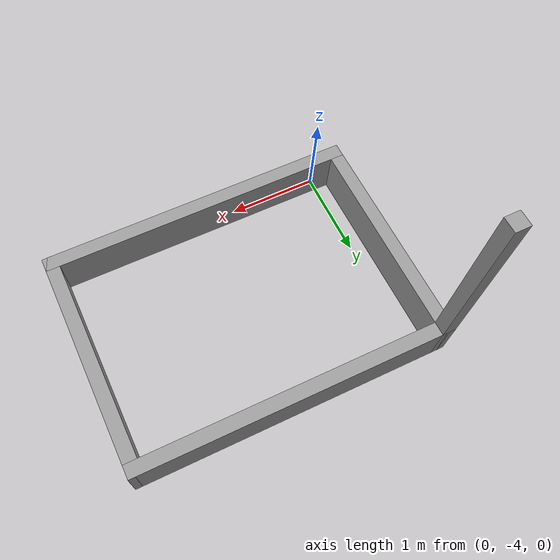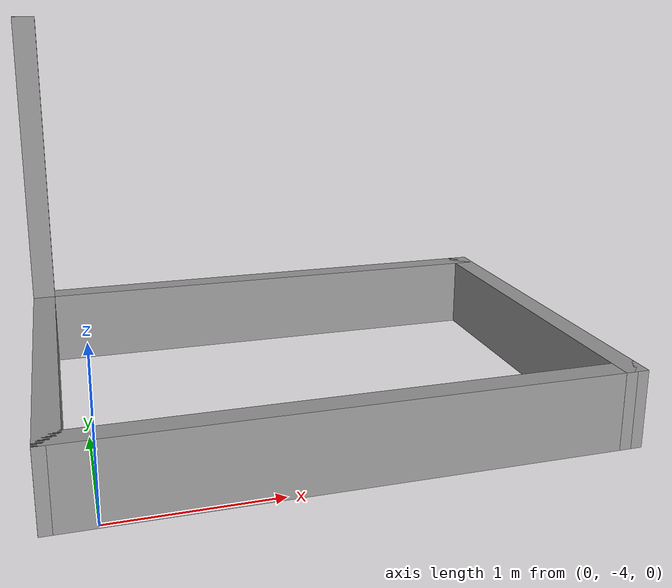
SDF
<?xml version='1.0'?>
<sdf version='1.6'>
  <model name='Mybuild2'>
    <pose frame=''>1.445 -2.78 0 0 -0 0</pose>
    <link name='Wall_0'>
      <collision name='Wall_0_Collision'>
        <geometry>
          <box>
            <size>3.50001 0.15 0.5</size>
          </box>
        </geometry>
        <pose frame=''>0 0 0.25 0 -0 0</pose>
      </collision>
      <visual name='Wall_0_Visual'>
        <pose frame=''>0 0 0.25 0 -0 0</pose>
        <geometry>
          <box>
            <size>3.50001 0.15 0.5</size>
          </box>
        </geometry>
        <material>
          <script>
            <uri>file://media/materials/scripts/gazebo.material</uri>
            <name>Gazebo/Grey</name>
          </script>
          <ambient>1 1 1 1</ambient>
        </material>
        <meta>
          <layer>0</layer>
        </meta>
      </visual>
      <pose frame=''>0 1.175 0 0 -0 -0.002985</pose>
    </link>
    <link name='Wall_1'>
      <collision name='Wall_1_Collision'>
        <geometry>
          <box>
            <size>2.5 0.15 0.5</size>
          </box>
        </geometry>
        <pose frame=''>0 0 0.25 0 -0 0</pose>
      </collision>
      <visual name='Wall_1_Visual'>
        <pose frame=''>0 0 0.25 0 -0 0</pose>
        <geometry>
          <box>
            <size>2.5 0.15 0.5</size>
          </box>
        </geometry>
        <material>
          <script>
            <uri>file://media/materials/scripts/gazebo.material</uri>
            <name>Gazebo/Grey</name>
          </script>
          <ambient>1 1 1 1</ambient>
        </material>
        <meta>
          <layer>0</layer>
        </meta>
      </visual>
      <pose frame=''>1.675 -0.005 0 0 -0 -1.5708</pose>
    </link>
    <link name='Wall_2'>
      <collision name='Wall_2_Collision'>
        <geometry>
          <box>
            <size>3.5 0.15 0.5</size>
          </box>
        </geometry>
        <pose frame=''>0 0 0.25 0 -0 0</pose>
      </collision>
      <visual name='Wall_2_Visual'>
        <pose frame=''>0 0 0.25 0 -0 0</pose>
        <geometry>
          <box>
            <size>3.5 0.15 0.5</size>
          </box>
        </geometry>
        <material>
          <script>
            <uri>file://media/materials/scripts/gazebo.material</uri>
            <name>Gazebo/Grey</name>
          </script>
          <ambient>1 1 1 1</ambient>
        </material>
        <meta>
          <layer>0</layer>
        </meta>
      </visual>
      <pose frame=''>0 -1.175 0 0 -0 3.13861</pose>
    </link>
    <link name='Wall_3'>
      <collision name='Wall_3_Collision'>
        <geometry>
          <box>
            <size>2.5 0.15 0.5</size>
          </box>
        </geometry>
        <pose frame=''>0 0 0.25 0 -0 0</pose>
      </collision>
      <visual name='Wall_3_Visual'>
        <pose frame=''>0 0 0.25 0 -0 0</pose>
        <geometry>
          <box>
            <size>2.5 0.15 0.5</size>
          </box>
        </geometry>
        <material>
          <script>
            <uri>file://media/materials/scripts/gazebo.material</uri>
            <name>Gazebo/Grey</name>
          </script>
          <ambient>1 1 1 1</ambient>
        </material>
        <meta>
          <layer>0</layer>
        </meta>
      </visual>
      <pose frame=''>-1.675 0.005 0 0 -0 1.5708</pose>
    </link>
    <link name='Wall_4'>
      <collision name='Wall_4_Collision'>
        <geometry>
          <box>
            <size>0.15 0.15 2.5</size>
          </box>
        </geometry>
        <pose frame=''>0 0 1.25 0 -0 0</pose>
      </collision>
      <visual name='Wall_4_Visual'>
        <pose frame=''>0 0 1.25 0 -0 0</pose>
        <geometry>
          <box>
            <size>0.15 0.15 2.5</size>
          </box>
        </geometry>
        <material>
          <script>
            <uri>file://media/materials/scripts/gazebo.material</uri>
            <name>Gazebo/Grey</name>
          </script>
          <ambient>1 1 1 1</ambient>
        </material>
        <meta>
          <layer>0</layer>
        </meta>
      </visual>
      <pose frame=''>-1.675 1.18 0 0 -0 0</pose>
    </link>
    <static>1</static>
  </model>
</sdf>
